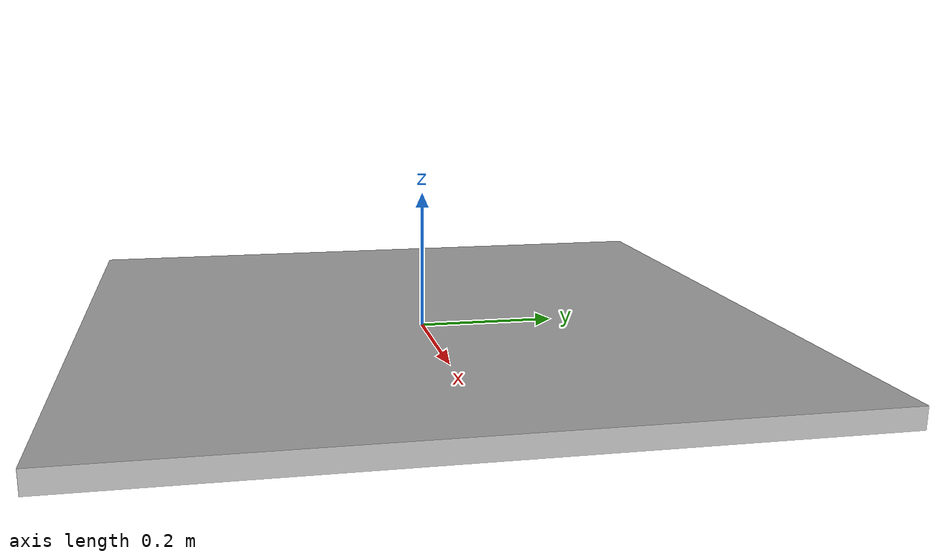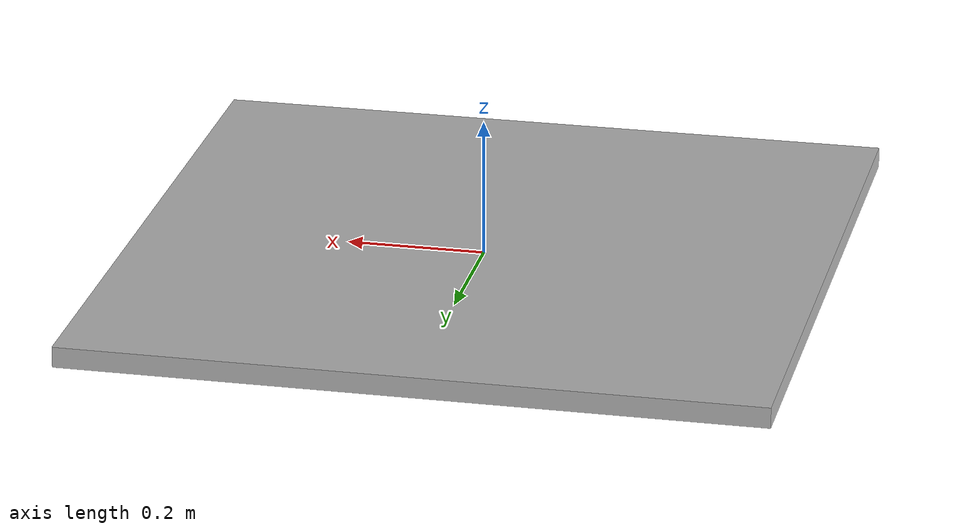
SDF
<?xml version='1.0'?>
<sdf version='1.4'>
  <model name="mark">
    <link name='link'>
      <pose>0 0 0 0 0 0</pose>

      <collision name='collision'>
        <geometry>
                <box>
                  <size>1 1 .03</size>
                </box>
        </geometry>
      </collision>

      <visual name='visual'>
        <geometry>
                <box>
                  <size>1 1 .03</size>
                </box>
        </geometry>

        <material>
          <script>
            <uri>model://mark/materials/scripts</uri>
            <uri>model://mark/materials/textures</uri>
            <name>Mark/Diffuse</name>
          </script>
        </material>
      </visual>
    </link>
  </model>
</sdf>
